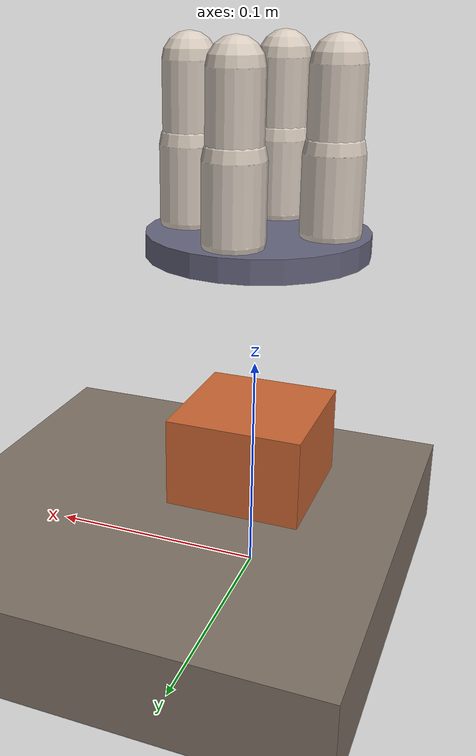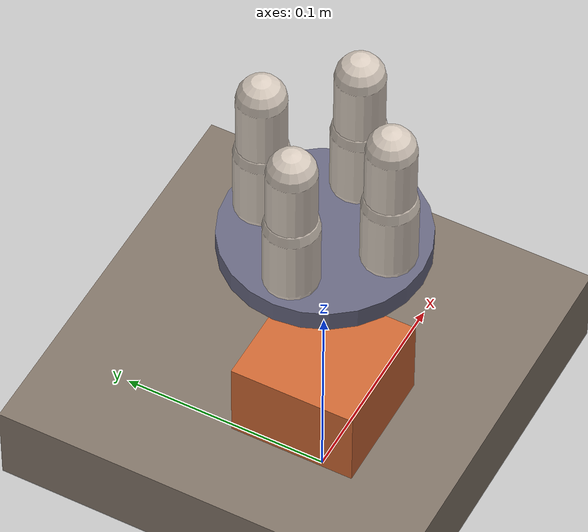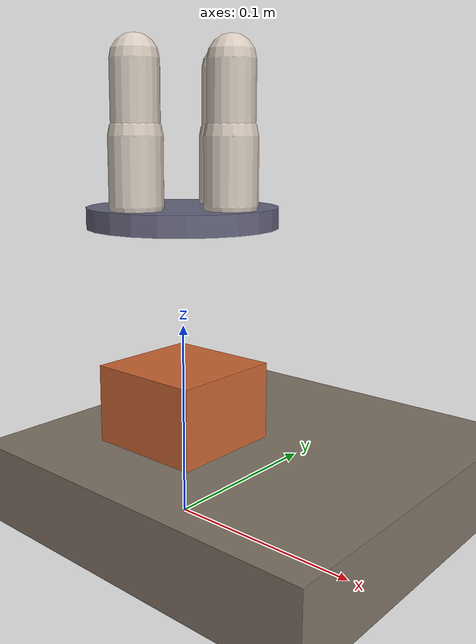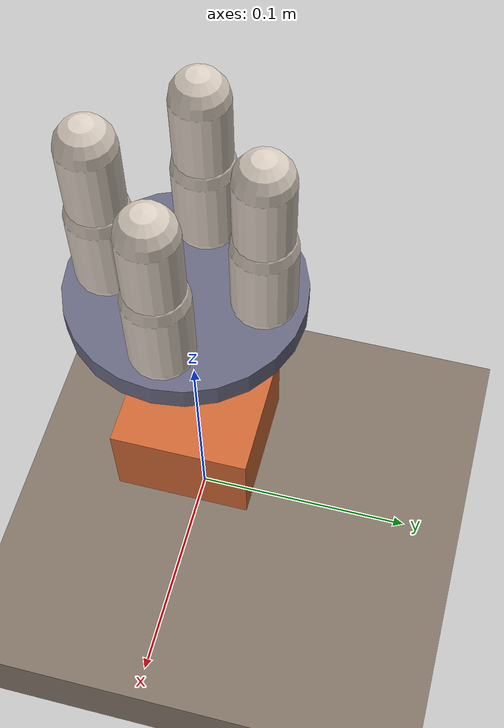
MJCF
<?xml version="1.0" encoding="utf-8"?>
<mujoco model="composed_scene">
  <compiler angle="radian" autolimits="true"/>
  <option timestep="0.002" gravity="0 0 -9.81"/>
  <worldbody>
    <geom name="ground" type="plane" size="1 1 0.1" condim="3"/>
    <light name="main" pos="0.5 0.5 1.2" dir="0 0 -1" directional="true"/>
    <camera name="main" pos="0.800 0.600 0.500" fovy="60" mode="fixed"/>
    <body name="surface_table" pos="0.0000 0.0000 0.0000"><geom name="table_geom" type="box" size="0.4 0.3 0.02" pos="0 0 0.02" rgba="0.5 0.45 0.4 1" condim="3" friction="1.2 0.005 0.0001"/></body>
    <body name="gripper_large_gripper_base" pos="0.0000 0.0000 0.1500">
      <joint name="gripper_large_gripper_x" type="slide" axis="1 0 0" range="-0.2 0.2"/>
      <joint name="gripper_large_gripper_y" type="slide" axis="0 1 0" range="-0.2 0.2"/>
      <joint name="gripper_large_gripper_z" type="slide" axis="0 0 1" range="-0.1 0.3"/>
      <body name="gripper_large_gripper" pos="0.0000 0.0000 0.0000">
            <geom class="palm" name="palm_geom" size="0.0470 0.0050" pos="0 0 0.0050" />
            <body name="finger_0_base" pos="0.0306 0.0000 0.0100">
              <joint class="gripper" name="finger_0_base_joint" axis="0 1 0" stiffness="0.0450" damping="0.1080" />
              <site name="finger_0_site_0" pos="0 0 0.002" size="0.002" />
              <geom class="gripper" name="finger_0_seg_0" fromto="0 0 0.0020 0 0 0.0335" size="0.0127" />
              <body name="finger_0_seg_1" pos="0 0 0.0335">
                <joint class="gripper" name="finger_0_joint_1" axis="0 1 0" stiffness="0.0375" damping="0.0840" />
                <geom class="gripper" name="finger_0_seg_1_geom" fromto="0 0 0.001 0 0 0.0335" size="0.0113" />
                <site name="finger_0_site_1" pos="0 0 0.0168" size="0.002" />
              </body>
              <body name="finger_0_seg_2" pos="0 0 0.0335">
                <joint class="gripper" name="finger_0_joint_2" axis="0 1 0" stiffness="0.0300" damping="0.0660" />
                <geom class="gripper" name="finger_0_seg_2_geom" fromto="0 0 0.001 0 0 0.0335" size="0.0100" />
                <site name="finger_0_site_2" pos="0 0 0.0168" size="0.002" />
              </body>
              <body name="finger_0_seg_3" pos="0 0 0.0335">
                <joint class="gripper" name="finger_0_joint_3" axis="0 1 0" stiffness="0.0250" damping="0.0540" />
                <geom class="gripper" name="finger_0_seg_3_geom" fromto="0 0 0.001 0 0 0.0335" size="0.0086" />
                <site name="finger_0_site_3" pos="0 0 0.0168" size="0.002" />
              </body>
            </body>
            <body name="finger_1_base" pos="0.0000 0.0306 0.0100">
              <joint class="gripper" name="finger_1_base_joint" axis="0 1 0" stiffness="0.0450" damping="0.1080" />
              <site name="finger_1_site_0" pos="0 0 0.002" size="0.002" />
              <geom class="gripper" name="finger_1_seg_0" fromto="0 0 0.0020 0 0 0.0335" size="0.0127" />
              <body name="finger_1_seg_1" pos="0 0 0.0335">
                <joint class="gripper" name="finger_1_joint_1" axis="0 1 0" stiffness="0.0375" damping="0.0840" />
                <geom class="gripper" name="finger_1_seg_1_geom" fromto="0 0 0.001 0 0 0.0335" size="0.0113" />
                <site name="finger_1_site_1" pos="0 0 0.0168" size="0.002" />
              </body>
              <body name="finger_1_seg_2" pos="0 0 0.0335">
                <joint class="gripper" name="finger_1_joint_2" axis="0 1 0" stiffness="0.0300" damping="0.0660" />
                <geom class="gripper" name="finger_1_seg_2_geom" fromto="0 0 0.001 0 0 0.0335" size="0.0100" />
                <site name="finger_1_site_2" pos="0 0 0.0168" size="0.002" />
              </body>
              <body name="finger_1_seg_3" pos="0 0 0.0335">
                <joint class="gripper" name="finger_1_joint_3" axis="0 1 0" stiffness="0.0250" damping="0.0540" />
                <geom class="gripper" name="finger_1_seg_3_geom" fromto="0 0 0.001 0 0 0.0335" size="0.0086" />
                <site name="finger_1_site_3" pos="0 0 0.0168" size="0.002" />
              </body>
            </body>
            <body name="finger_2_base" pos="-0.0306 0.0000 0.0100">
              <joint class="gripper" name="finger_2_base_joint" axis="0 1 0" stiffness="0.0450" damping="0.1080" />
              <site name="finger_2_site_0" pos="0 0 0.002" size="0.002" />
              <geom class="gripper" name="finger_2_seg_0" fromto="0 0 0.0020 0 0 0.0335" size="0.0127" />
              <body name="finger_2_seg_1" pos="0 0 0.0335">
                <joint class="gripper" name="finger_2_joint_1" axis="0 1 0" stiffness="0.0375" damping="0.0840" />
                <geom class="gripper" name="finger_2_seg_1_geom" fromto="0 0 0.001 0 0 0.0335" size="0.0113" />
                <site name="finger_2_site_1" pos="0 0 0.0168" size="0.002" />
              </body>
              <body name="finger_2_seg_2" pos="0 0 0.0335">
                <joint class="gripper" name="finger_2_joint_2" axis="0 1 0" stiffness="0.0300" damping="0.0660" />
                <geom class="gripper" name="finger_2_seg_2_geom" fromto="0 0 0.001 0 0 0.0335" size="0.0100" />
                <site name="finger_2_site_2" pos="0 0 0.0168" size="0.002" />
              </body>
              <body name="finger_2_seg_3" pos="0 0 0.0335">
                <joint class="gripper" name="finger_2_joint_3" axis="0 1 0" stiffness="0.0250" damping="0.0540" />
                <geom class="gripper" name="finger_2_seg_3_geom" fromto="0 0 0.001 0 0 0.0335" size="0.0086" />
                <site name="finger_2_site_3" pos="0 0 0.0168" size="0.002" />
              </body>
            </body>
            <body name="finger_3_base" pos="-0.0000 -0.0306 0.0100">
              <joint class="gripper" name="finger_3_base_joint" axis="0 1 0" stiffness="0.0450" damping="0.1080" />
              <site name="finger_3_site_0" pos="0 0 0.002" size="0.002" />
              <geom class="gripper" name="finger_3_seg_0" fromto="0 0 0.0020 0 0 0.0335" size="0.0127" />
              <body name="finger_3_seg_1" pos="0 0 0.0335">
                <joint class="gripper" name="finger_3_joint_1" axis="0 1 0" stiffness="0.0375" damping="0.0840" />
                <geom class="gripper" name="finger_3_seg_1_geom" fromto="0 0 0.001 0 0 0.0335" size="0.0113" />
                <site name="finger_3_site_1" pos="0 0 0.0168" size="0.002" />
              </body>
              <body name="finger_3_seg_2" pos="0 0 0.0335">
                <joint class="gripper" name="finger_3_joint_2" axis="0 1 0" stiffness="0.0300" damping="0.0660" />
                <geom class="gripper" name="finger_3_seg_2_geom" fromto="0 0 0.001 0 0 0.0335" size="0.0100" />
                <site name="finger_3_site_2" pos="0 0 0.0168" size="0.002" />
              </body>
              <body name="finger_3_seg_3" pos="0 0 0.0335">
                <joint class="gripper" name="finger_3_joint_3" axis="0 1 0" stiffness="0.0250" damping="0.0540" />
                <geom class="gripper" name="finger_3_seg_3_geom" fromto="0 0 0.001 0 0 0.0335" size="0.0086" />
                <site name="finger_3_site_3" pos="0 0 0.0168" size="0.002" />
              </body>
            </body>
          </body>
    </body>
    <body name="object_box" pos="0.0000 0.0000 0.0500"><freejoint name="box_joint"/><geom name="box_geom" type="box" size="0.03 0.03 0.03" mass="0.100" rgba="0.8 0.4 0.2 1"/></body>
  </worldbody>
  <default>
    <default class="gripper">
    <geom type="capsule" condim="4" friction="1.0 0.005 0.0001" rgba="0.85 0.8 0.75 1" margin="0.001" />
    <joint type="hinge" limited="true" range="-1.57 1.57" stiffness="0.05" damping="0.12" armature="0.001" />
    </default>
    <default class="palm"><geom type="cylinder" rgba="0.4 0.4 0.5 1" friction="1.0 0.005 0.0001" />
    </default>
  </default>
  <tendon>
    <spatial name="finger_0_flexor" limited="true" range="0 0.15" width="0.002" frictionloss="0.1">
    <site site="finger_0_site_0" />
    <site site="finger_0_site_1" />
    <site site="finger_0_site_2" />
    <site site="finger_0_site_3" />
    </spatial>
    <spatial name="finger_0_extensor" limited="true" range="0 0.15" width="0.002" frictionloss="0.1">
    <site site="finger_0_site_3" />
    <site site="finger_0_site_2" />
    <site site="finger_0_site_1" />
    <site site="finger_0_site_0" />
    </spatial>
    <spatial name="finger_1_flexor" limited="true" range="0 0.15" width="0.002" frictionloss="0.1">
    <site site="finger_1_site_0" />
    <site site="finger_1_site_1" />
    <site site="finger_1_site_2" />
    <site site="finger_1_site_3" />
    </spatial>
    <spatial name="finger_1_extensor" limited="true" range="0 0.15" width="0.002" frictionloss="0.1">
    <site site="finger_1_site_3" />
    <site site="finger_1_site_2" />
    <site site="finger_1_site_1" />
    <site site="finger_1_site_0" />
    </spatial>
    <spatial name="finger_2_flexor" limited="true" range="0 0.15" width="0.002" frictionloss="0.1">
    <site site="finger_2_site_0" />
    <site site="finger_2_site_1" />
    <site site="finger_2_site_2" />
    <site site="finger_2_site_3" />
    </spatial>
    <spatial name="finger_2_extensor" limited="true" range="0 0.15" width="0.002" frictionloss="0.1">
    <site site="finger_2_site_3" />
    <site site="finger_2_site_2" />
    <site site="finger_2_site_1" />
    <site site="finger_2_site_0" />
    </spatial>
    <spatial name="finger_3_flexor" limited="true" range="0 0.15" width="0.002" frictionloss="0.1">
    <site site="finger_3_site_0" />
    <site site="finger_3_site_1" />
    <site site="finger_3_site_2" />
    <site site="finger_3_site_3" />
    </spatial>
    <spatial name="finger_3_extensor" limited="true" range="0 0.15" width="0.002" frictionloss="0.1">
    <site site="finger_3_site_3" />
    <site site="finger_3_site_2" />
    <site site="finger_3_site_1" />
    <site site="finger_3_site_0" />
    </spatial>
  </tendon>
  <actuator>
    <position name="gripper_large_gripper_x_act" joint="gripper_large_gripper_x" kp="100"/>
    <position name="gripper_large_gripper_y_act" joint="gripper_large_gripper_y" kp="100"/>
    <position name="gripper_large_gripper_z_act" joint="gripper_large_gripper_z" kp="100"/>
    <motor name="finger_0_flexor_motor" tendon="finger_0_flexor" gear="50" ctrllimited="true" ctrlrange="0 1" />
    <motor name="finger_0_extensor_motor" tendon="finger_0_extensor" gear="25" ctrllimited="true" ctrlrange="0 0.5" />
    <motor name="finger_1_flexor_motor" tendon="finger_1_flexor" gear="50" ctrllimited="true" ctrlrange="0 1" />
    <motor name="finger_1_extensor_motor" tendon="finger_1_extensor" gear="25" ctrllimited="true" ctrlrange="0 0.5" />
    <motor name="finger_2_flexor_motor" tendon="finger_2_flexor" gear="50" ctrllimited="true" ctrlrange="0 1" />
    <motor name="finger_2_extensor_motor" tendon="finger_2_extensor" gear="25" ctrllimited="true" ctrlrange="0 0.5" />
    <motor name="finger_3_flexor_motor" tendon="finger_3_flexor" gear="50" ctrllimited="true" ctrlrange="0 1" />
    <motor name="finger_3_extensor_motor" tendon="finger_3_extensor" gear="25" ctrllimited="true" ctrlrange="0 0.5" />
  </actuator>
  <sensor>
    <jointpos name="finger_0_pos" joint="finger_0_base_joint" />
    <jointvel name="finger_0_vel" joint="finger_0_base_joint" />
    <tendonpos name="finger_0_flexor_len" tendon="finger_0_flexor" />
    <jointpos name="finger_1_pos" joint="finger_1_base_joint" />
    <jointvel name="finger_1_vel" joint="finger_1_base_joint" />
    <tendonpos name="finger_1_flexor_len" tendon="finger_1_flexor" />
    <jointpos name="finger_2_pos" joint="finger_2_base_joint" />
    <jointvel name="finger_2_vel" joint="finger_2_base_joint" />
    <tendonpos name="finger_2_flexor_len" tendon="finger_2_flexor" />
    <jointpos name="finger_3_pos" joint="finger_3_base_joint" />
    <jointvel name="finger_3_vel" joint="finger_3_base_joint" />
    <tendonpos name="finger_3_flexor_len" tendon="finger_3_flexor" />
  </sensor>
  <contact>
    <pair name="gripper_object_finger_1_seg_3_geom_box_geom" geom1="finger_1_seg_3_geom" geom2="box_geom" condim="3"/>
    <pair name="gripper_object_finger_3_seg_2_geom_box_geom" geom1="finger_3_seg_2_geom" geom2="box_geom" condim="3"/>
    <pair name="gripper_object_finger_3_seg_1_geom_box_geom" geom1="finger_3_seg_1_geom" geom2="box_geom" condim="3"/>
    <pair name="gripper_object_finger_2_seg_1_geom_box_geom" geom1="finger_2_seg_1_geom" geom2="box_geom" condim="3"/>
    <pair name="gripper_object_finger_0_seg_2_geom_box_geom" geom1="finger_0_seg_2_geom" geom2="box_geom" condim="3"/>
    <pair name="gripper_object_finger_0_seg_3_geom_box_geom" geom1="finger_0_seg_3_geom" geom2="box_geom" condim="3"/>
    <pair name="gripper_object_finger_3_seg_3_geom_box_geom" geom1="finger_3_seg_3_geom" geom2="box_geom" condim="3"/>
    <pair name="gripper_object_finger_3_seg_0_box_geom" geom1="finger_3_seg_0" geom2="box_geom" condim="3"/>
    <pair name="gripper_object_finger_1_seg_1_geom_box_geom" geom1="finger_1_seg_1_geom" geom2="box_geom" condim="3"/>
    <pair name="gripper_object_finger_0_seg_1_geom_box_geom" geom1="finger_0_seg_1_geom" geom2="box_geom" condim="3"/>
    <pair name="gripper_object_finger_1_seg_0_box_geom" geom1="finger_1_seg_0" geom2="box_geom" condim="3"/>
    <pair name="gripper_object_finger_1_seg_2_geom_box_geom" geom1="finger_1_seg_2_geom" geom2="box_geom" condim="3"/>
    <pair name="gripper_object_finger_0_seg_0_box_geom" geom1="finger_0_seg_0" geom2="box_geom" condim="3"/>
    <pair name="gripper_object_finger_2_seg_2_geom_box_geom" geom1="finger_2_seg_2_geom" geom2="box_geom" condim="3"/>
    <pair name="gripper_object_finger_2_seg_0_box_geom" geom1="finger_2_seg_0" geom2="box_geom" condim="3"/>
    <pair name="gripper_object_palm_geom_box_geom" geom1="palm_geom" geom2="box_geom" condim="3"/>
    <pair name="gripper_object_finger_2_seg_3_geom_box_geom" geom1="finger_2_seg_3_geom" geom2="box_geom" condim="3"/>
  </contact>
</mujoco>
